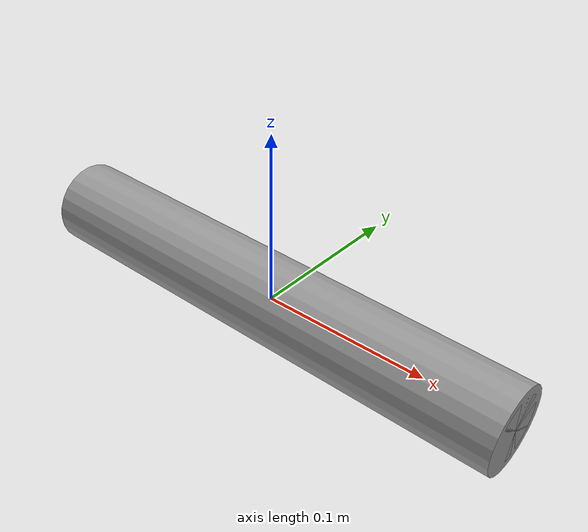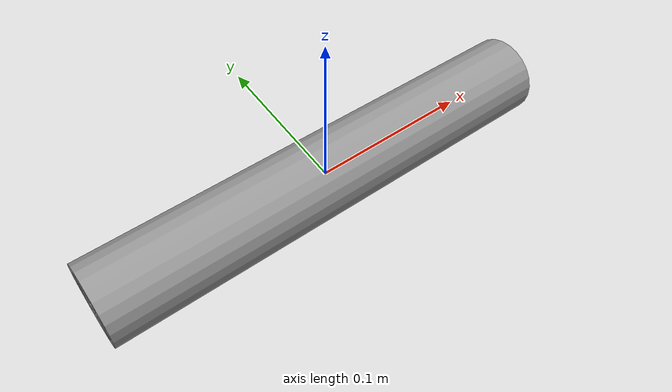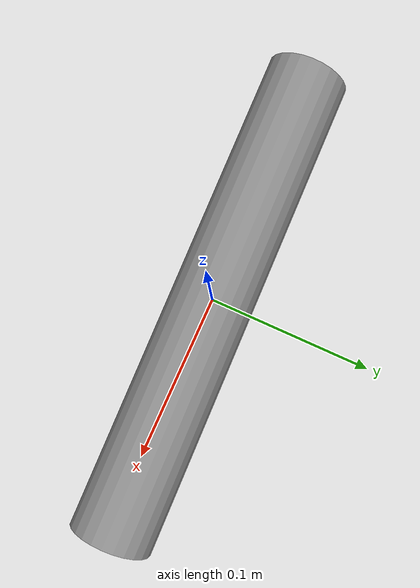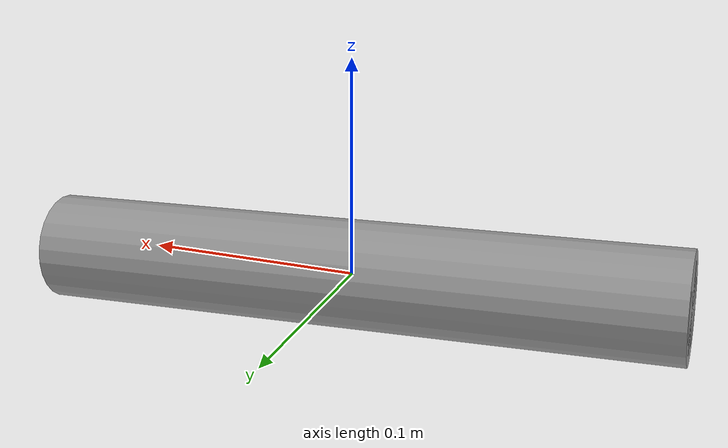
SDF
<?xml version='1.0'?>
<sdf version='1.7'>
  <model name='linear_actuator_2'>
    <link name='link_1'>
      <inertial>
        <mass>0.104563</mass>
        <inertia>
          <ixx>0.0012282</ixx>
          <ixy>0</ixy>
          <ixz>0</ixz>
          <iyy>0.0012282</iyy>
          <iyz>0</iyz>
          <izz>0.0013672</izz>
        </inertia>
        <pose>0 0 0 0.11 -0 0</pose>
      </inertial>
      <pose>0 0 0 3.12167 1.53471 3.14159</pose>
      <gravity>1</gravity>
      <self_collide>0</self_collide>
      <kinematic>0</kinematic>
      <enable_wind>0</enable_wind>
      <visual name='visual'>
        <pose>0 0 0 0 -0 0</pose>
        <geometry>
          <cylinder>
            <radius>0.025</radius>
            <length>0.3</length>
          </cylinder>
        </geometry>
        <material>
          <lighting>1</lighting>
          <script>
            <uri>file://media/materials/scripts/gazebo.material</uri>
            <name>Gazebo/Grey</name>
          </script>
          <shader type='pixel'>
            <normal_map>__default__</normal_map>
          </shader>
          <ambient>0.3 0.3 0.3 1</ambient>
          <diffuse>0.7 0.7 0.7 1</diffuse>
          <specular>0.01 0.01 0.01 1</specular>
          <emissive>0 0 0 1</emissive>
        </material>
        <transparency>0</transparency>
        <cast_shadows>1</cast_shadows>
      </visual>
      <collision name='collision'>
        <laser_retro>0</laser_retro>
        <max_contacts>10</max_contacts>
        <pose>0 0 0 0 -0 0</pose>
        <geometry>
          <cylinder>
            <radius>0.161712</radius>
            <length>0.25</length>
          </cylinder>
        </geometry>
        <surface>
          <friction>
            <ode>
              <mu>1</mu>
              <mu2>1</mu2>
              <fdir1>0 0 0</fdir1>
              <slip1>0</slip1>
              <slip2>0</slip2>
            </ode>
            <torsional>
              <coefficient>1</coefficient>
              <patch_radius>0</patch_radius>
              <surface_radius>0</surface_radius>
              <use_patch_radius>1</use_patch_radius>
              <ode>
                <slip>0</slip>
              </ode>
            </torsional>
          </friction>
          <bounce>
            <restitution_coefficient>0</restitution_coefficient>
            <threshold>1e+06</threshold>
          </bounce>
          <contact>
            <collide_without_contact>0</collide_without_contact>
            <collide_without_contact_bitmask>1</collide_without_contact_bitmask>
            <collide_bitmask>1</collide_bitmask>
            <ode>
              <soft_cfm>0</soft_cfm>
              <soft_erp>0.2</soft_erp>
              <kp>1e+13</kp>
              <kd>1</kd>
              <max_vel>0.01</max_vel>
              <min_depth>0</min_depth>
            </ode>
            <bullet>
              <split_impulse>1</split_impulse>
              <split_impulse_penetration_threshold>-0.01</split_impulse_penetration_threshold>
              <soft_cfm>0</soft_cfm>
              <soft_erp>0.2</soft_erp>
              <kp>1e+13</kp>
              <kd>1</kd>
            </bullet>
          </contact>
        </surface>
      </collision>
    </link>
    <link name='link_1_clone'>
      <inertial>
        <mass>0.0422047</mass>
        <inertia>
          <ixx>0.00362842</ixx>
          <ixy>0</ixy>
          <ixz>0</ixz>
          <iyy>0.00362842</iyy>
          <iyz>0</iyz>
          <izz>0.00022272</izz>
        </inertia>
        <pose>0 0 0 0.11 -0 0</pose>
      </inertial>
      <pose>0 0 0 3.12167 1.53471 3.14159</pose>
      <gravity>1</gravity>
      <self_collide>0</self_collide>
      <kinematic>0</kinematic>
      <enable_wind>0</enable_wind>
      <visual name='visual'>
        <pose>0 0 0 0 -0 0</pose>
        <geometry>
          <cylinder>
            <radius>0.02</radius>
            <length>0.3</length>
          </cylinder>
        </geometry>
        <material>
          <lighting>1</lighting>
          <script>
            <uri>file://media/materials/scripts/gazebo.material</uri>
            <name>Gazebo/Grey</name>
          </script>
          <shader type='pixel'>
            <normal_map>__default__</normal_map>
          </shader>
          <ambient>0.3 0.3 0.3 1</ambient>
          <diffuse>0.7 0.7 0.7 1</diffuse>
          <specular>0.01 0.01 0.01 1</specular>
          <emissive>0 0 0 1</emissive>
        </material>
        <transparency>0</transparency>
        <cast_shadows>1</cast_shadows>
      </visual>
      <collision name='collision'>
        <laser_retro>0</laser_retro>
        <max_contacts>10</max_contacts>
        <pose>0 0 0 0 -0 0</pose>
        <geometry>
          <cylinder>
            <radius>0.102734</radius>
            <length>0.25</length>
          </cylinder>
        </geometry>
        <surface>
          <friction>
            <ode>
              <mu>1</mu>
              <mu2>1</mu2>
              <fdir1>0 0 0</fdir1>
              <slip1>0</slip1>
              <slip2>0</slip2>
            </ode>
            <torsional>
              <coefficient>1</coefficient>
              <patch_radius>0</patch_radius>
              <surface_radius>0</surface_radius>
              <use_patch_radius>1</use_patch_radius>
              <ode>
                <slip>0</slip>
              </ode>
            </torsional>
          </friction>
          <bounce>
            <restitution_coefficient>0</restitution_coefficient>
            <threshold>1e+06</threshold>
          </bounce>
          <contact>
            <collide_without_contact>0</collide_without_contact>
            <collide_without_contact_bitmask>1</collide_without_contact_bitmask>
            <collide_bitmask>1</collide_bitmask>
            <ode>
              <soft_cfm>0</soft_cfm>
              <soft_erp>0.2</soft_erp>
              <kp>1e+13</kp>
              <kd>1</kd>
              <max_vel>0.01</max_vel>
              <min_depth>0</min_depth>
            </ode>
            <bullet>
              <split_impulse>1</split_impulse>
              <split_impulse_penetration_threshold>-0.01</split_impulse_penetration_threshold>
              <soft_cfm>0</soft_cfm>
              <soft_erp>0.2</soft_erp>
              <kp>1e+13</kp>
              <kd>1</kd>
            </bullet>
          </contact>
        </surface>
      </collision>
    </link>
    <joint name='link_1_JOINT_0' type='prismatic'>
      <parent>link_1</parent>
      <child>link_1_clone</child>
      <pose>0 0 0 0 -0 0</pose>
      <axis>
        <xyz>0 0 1</xyz>
        <limit>
          <lower>0</lower>
          <upper>0.2</upper>
          <effort>-1</effort>
          <velocity>10</velocity>
        </limit>
        <dynamics>
          <spring_reference>0</spring_reference>
          <spring_stiffness>0</spring_stiffness>
          <damping>0</damping>
          <friction>0</friction>
        </dynamics>
      </axis>
      <physics>
        <ode>
          <limit>
            <cfm>0</cfm>
            <erp>0.2</erp>
          </limit>
          <suspension>
            <cfm>0</cfm>
            <erp>0.2</erp>
          </suspension>
        </ode>
      </physics>
    </joint>
    <static>0</static>
    <allow_auto_disable>1</allow_auto_disable>
  </model>
</sdf>
